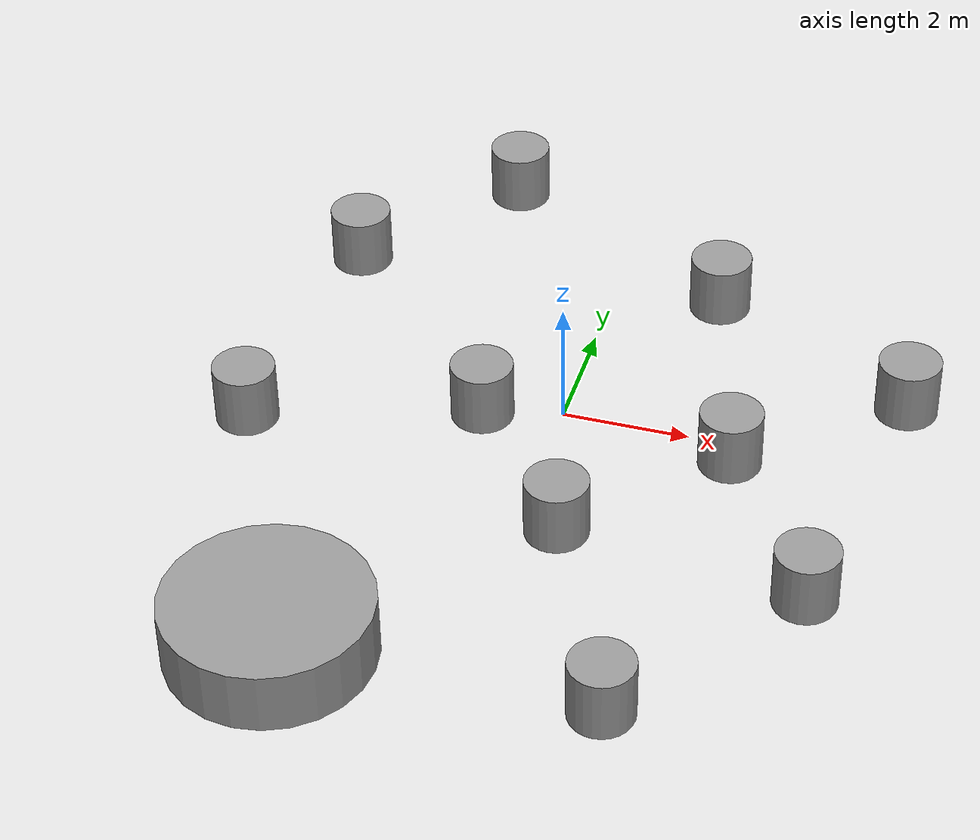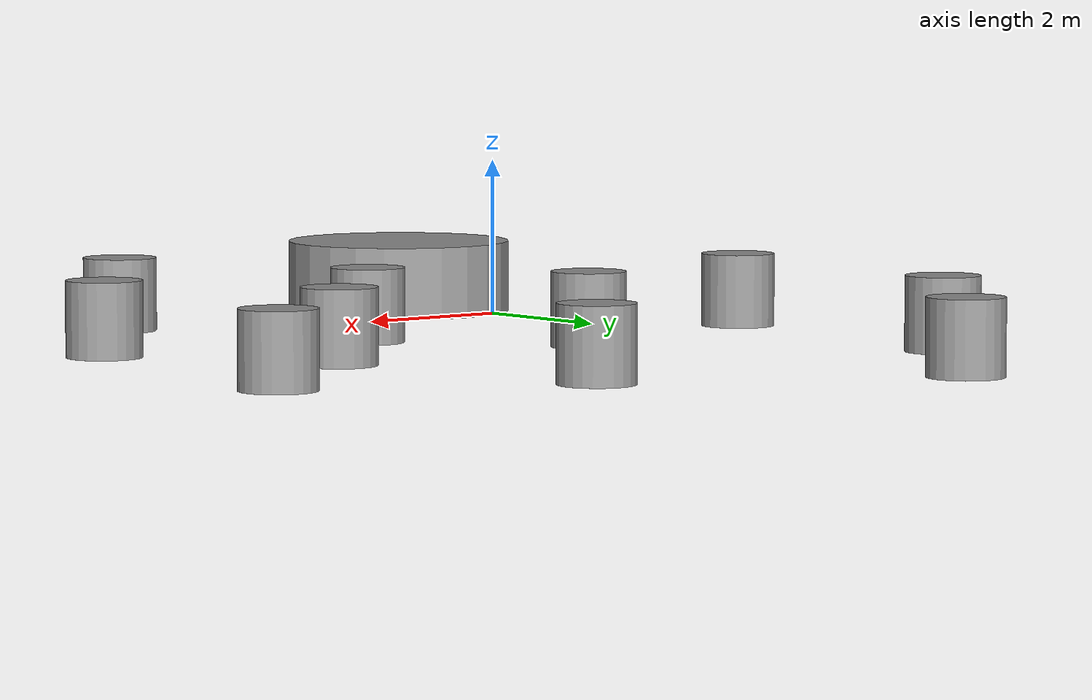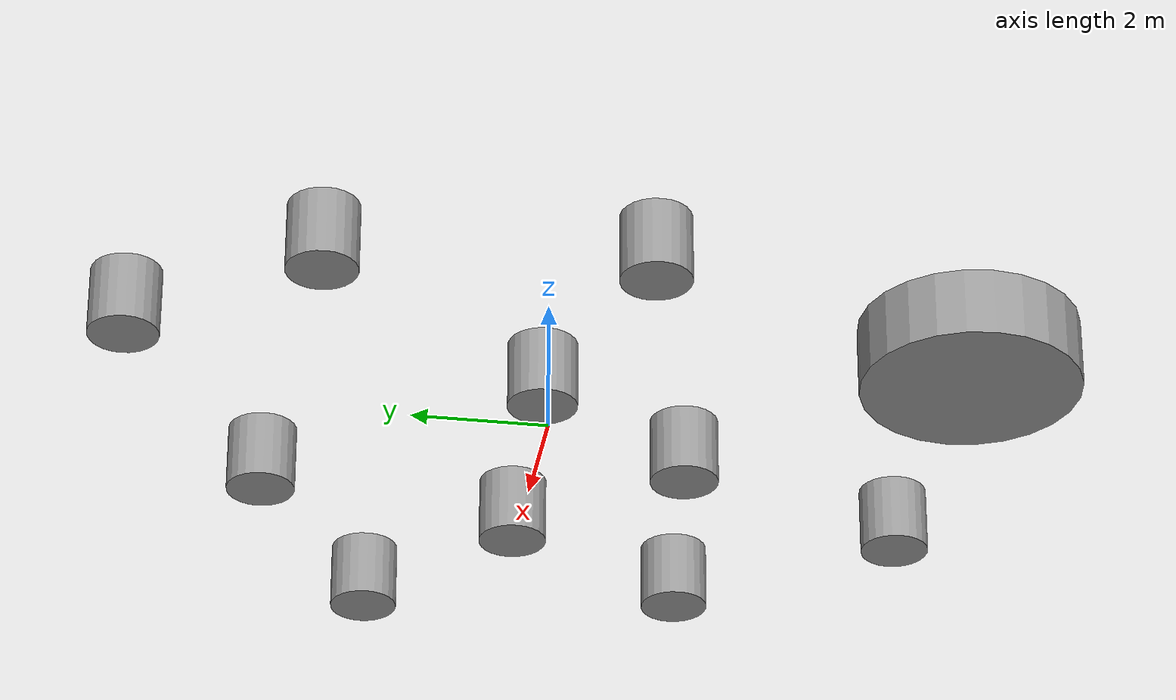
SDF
<?xml version='1.0'?>
<sdf version='1.7'>
  <model name='forceDafield'>
    <link name='link_0'>
      <inertial>
        <mass>9.89524</mass>
        <inertia>
          <ixx>6.94445</ixx>
          <ixy>0</ixy>
          <ixz>0</ixz>
          <iyy>6.94445</iyy>
          <iyz>0</iyz>
          <izz>12.2397</izz>
        </inertia>
        <pose>0 0 0 0 -0 0</pose>
      </inertial>
      <pose>-2.7803 -5.58409 0 0 -0 0</pose>
      <visual name='visual'>
        <pose>0 0 0 0 -0 0</pose>
        <geometry>
          <cylinder>
            <radius>1.57285</radius>
            <length>1</length>
          </cylinder>
        </geometry>
        <material>
          <lighting>1</lighting>
          <script>
            <uri>file://media/materials/scripts/gazebo.material</uri>
            <name>Gazebo/Grey</name>
          </script>
          <shader type='pixel'/>
        </material>
        <transparency>0</transparency>
        <cast_shadows>1</cast_shadows>
      </visual>
      <collision name='collision'>
        <laser_retro>0</laser_retro>
        <max_contacts>10</max_contacts>
        <pose>0 0 0 0 -0 0</pose>
        <geometry>
          <cylinder>
            <radius>1.57285</radius>
            <length>1</length>
          </cylinder>
        </geometry>
        <surface>
          <friction>
            <ode>
              <mu>1</mu>
              <mu2>1</mu2>
              <fdir1>0 0 0</fdir1>
              <slip1>0</slip1>
              <slip2>0</slip2>
            </ode>
            <torsional>
              <coefficient>1</coefficient>
              <patch_radius>0</patch_radius>
              <surface_radius>0</surface_radius>
              <use_patch_radius>1</use_patch_radius>
              <ode>
                <slip>0</slip>
              </ode>
            </torsional>
          </friction>
          <bounce>
            <restitution_coefficient>0</restitution_coefficient>
            <threshold>1e+06</threshold>
          </bounce>
          <contact>
            <collide_without_contact>0</collide_without_contact>
            <collide_without_contact_bitmask>1</collide_without_contact_bitmask>
            <collide_bitmask>1</collide_bitmask>
            <ode>
              <soft_cfm>0</soft_cfm>
              <soft_erp>0.2</soft_erp>
              <kp>1e+13</kp>
              <kd>1</kd>
              <max_vel>0.01</max_vel>
              <min_depth>0</min_depth>
            </ode>
            <bullet>
              <split_impulse>1</split_impulse>
              <split_impulse_penetration_threshold>-0.01</split_impulse_penetration_threshold>
              <soft_cfm>0</soft_cfm>
              <soft_erp>0.2</soft_erp>
              <kp>1e+13</kp>
              <kd>1</kd>
            </bullet>
          </contact>
        </surface>
      </collision>
    </link>
    <link name='link_1'>
      <inertial>
        <mass>1</mass>
        <inertia>
          <ixx>0.145833</ixx>
          <ixy>0</ixy>
          <ixz>0</ixz>
          <iyy>0.145833</iyy>
          <iyz>0</iyz>
          <izz>0.125</izz>
        </inertia>
      </inertial>
      <pose>-1.39645 0.27819 0 0 -0 0</pose>
      <visual name='visual'>
        <pose>0 0 0 0 -0 0</pose>
        <geometry>
          <cylinder>
            <radius>0.5</radius>
            <length>1</length>
          </cylinder>
        </geometry>
        <material>
          <lighting>1</lighting>
          <script>
            <uri>file://media/materials/scripts/gazebo.material</uri>
            <name>Gazebo/Grey</name>
          </script>
          <shader type='pixel'/>
        </material>
        <transparency>0</transparency>
        <cast_shadows>1</cast_shadows>
      </visual>
      <collision name='collision'>
        <laser_retro>0</laser_retro>
        <max_contacts>10</max_contacts>
        <pose>0 0 0 0 -0 0</pose>
        <geometry>
          <cylinder>
            <radius>0.5</radius>
            <length>1</length>
          </cylinder>
        </geometry>
        <surface>
          <friction>
            <ode>
              <mu>1</mu>
              <mu2>1</mu2>
              <fdir1>0 0 0</fdir1>
              <slip1>0</slip1>
              <slip2>0</slip2>
            </ode>
            <torsional>
              <coefficient>1</coefficient>
              <patch_radius>0</patch_radius>
              <surface_radius>0</surface_radius>
              <use_patch_radius>1</use_patch_radius>
              <ode>
                <slip>0</slip>
              </ode>
            </torsional>
          </friction>
          <bounce>
            <restitution_coefficient>0</restitution_coefficient>
            <threshold>1e+06</threshold>
          </bounce>
          <contact>
            <collide_without_contact>0</collide_without_contact>
            <collide_without_contact_bitmask>1</collide_without_contact_bitmask>
            <collide_bitmask>1</collide_bitmask>
            <ode>
              <soft_cfm>0</soft_cfm>
              <soft_erp>0.2</soft_erp>
              <kp>1e+13</kp>
              <kd>1</kd>
              <max_vel>0.01</max_vel>
              <min_depth>0</min_depth>
            </ode>
            <bullet>
              <split_impulse>1</split_impulse>
              <split_impulse_penetration_threshold>-0.01</split_impulse_penetration_threshold>
              <soft_cfm>0</soft_cfm>
              <soft_erp>0.2</soft_erp>
              <kp>1e+13</kp>
              <kd>1</kd>
            </bullet>
          </contact>
        </surface>
      </collision>
    </link>
    <link name='link_10'>
      <inertial>
        <mass>1</mass>
        <inertia>
          <ixx>0.145833</ixx>
          <ixy>0</ixy>
          <ixz>0</ixz>
          <iyy>0.145833</iyy>
          <iyz>0</iyz>
          <izz>0.125</izz>
        </inertia>
      </inertial>
      <pose>-2.49127 6.23501 0 0 -0 0</pose>
      <visual name='visual'>
        <pose>0 0 0 0 -0 0</pose>
        <geometry>
          <cylinder>
            <radius>0.5</radius>
            <length>1</length>
          </cylinder>
        </geometry>
        <material>
          <lighting>1</lighting>
          <script>
            <uri>file://media/materials/scripts/gazebo.material</uri>
            <name>Gazebo/Grey</name>
          </script>
          <shader type='pixel'/>
        </material>
        <transparency>0</transparency>
        <cast_shadows>1</cast_shadows>
      </visual>
      <collision name='collision'>
        <laser_retro>0</laser_retro>
        <max_contacts>10</max_contacts>
        <pose>0 0 0 0 -0 0</pose>
        <geometry>
          <cylinder>
            <radius>0.5</radius>
            <length>1</length>
          </cylinder>
        </geometry>
        <surface>
          <friction>
            <ode>
              <mu>1</mu>
              <mu2>1</mu2>
              <fdir1>0 0 0</fdir1>
              <slip1>0</slip1>
              <slip2>0</slip2>
            </ode>
            <torsional>
              <coefficient>1</coefficient>
              <patch_radius>0</patch_radius>
              <surface_radius>0</surface_radius>
              <use_patch_radius>1</use_patch_radius>
              <ode>
                <slip>0</slip>
              </ode>
            </torsional>
          </friction>
          <bounce>
            <restitution_coefficient>0</restitution_coefficient>
            <threshold>1e+06</threshold>
          </bounce>
          <contact>
            <collide_without_contact>0</collide_without_contact>
            <collide_without_contact_bitmask>1</collide_without_contact_bitmask>
            <collide_bitmask>1</collide_bitmask>
            <ode>
              <soft_cfm>0</soft_cfm>
              <soft_erp>0.2</soft_erp>
              <kp>1e+13</kp>
              <kd>1</kd>
              <max_vel>0.01</max_vel>
              <min_depth>0</min_depth>
            </ode>
            <bullet>
              <split_impulse>1</split_impulse>
              <split_impulse_penetration_threshold>-0.01</split_impulse_penetration_threshold>
              <soft_cfm>0</soft_cfm>
              <soft_erp>0.2</soft_erp>
              <kp>1e+13</kp>
              <kd>1</kd>
            </bullet>
          </contact>
        </surface>
      </collision>
    </link>
    <link name='link_2'>
      <inertial>
        <mass>1</mass>
        <inertia>
          <ixx>0.145833</ixx>
          <ixy>0</ixy>
          <ixz>0</ixz>
          <iyy>0.145833</iyy>
          <iyz>0</iyz>
          <izz>0.125</izz>
        </inertia>
      </inertial>
      <pose>-4.96369 -0.759655 0 0 -0 0</pose>
      <visual name='visual'>
        <pose>0 0 0 0 -0 0</pose>
        <geometry>
          <cylinder>
            <radius>0.5</radius>
            <length>1</length>
          </cylinder>
        </geometry>
        <material>
          <lighting>1</lighting>
          <script>
            <uri>file://media/materials/scripts/gazebo.material</uri>
            <name>Gazebo/Grey</name>
          </script>
          <shader type='pixel'/>
        </material>
        <transparency>0</transparency>
        <cast_shadows>1</cast_shadows>
      </visual>
      <collision name='collision'>
        <laser_retro>0</laser_retro>
        <max_contacts>10</max_contacts>
        <pose>0 0 0 0 -0 0</pose>
        <geometry>
          <cylinder>
            <radius>0.5</radius>
            <length>1</length>
          </cylinder>
        </geometry>
        <surface>
          <friction>
            <ode>
              <mu>1</mu>
              <mu2>1</mu2>
              <fdir1>0 0 0</fdir1>
              <slip1>0</slip1>
              <slip2>0</slip2>
            </ode>
            <torsional>
              <coefficient>1</coefficient>
              <patch_radius>0</patch_radius>
              <surface_radius>0</surface_radius>
              <use_patch_radius>1</use_patch_radius>
              <ode>
                <slip>0</slip>
              </ode>
            </torsional>
          </friction>
          <bounce>
            <restitution_coefficient>0</restitution_coefficient>
            <threshold>1e+06</threshold>
          </bounce>
          <contact>
            <collide_without_contact>0</collide_without_contact>
            <collide_without_contact_bitmask>1</collide_without_contact_bitmask>
            <collide_bitmask>1</collide_bitmask>
            <ode>
              <soft_cfm>0</soft_cfm>
              <soft_erp>0.2</soft_erp>
              <kp>1e+13</kp>
              <kd>1</kd>
              <max_vel>0.01</max_vel>
              <min_depth>0</min_depth>
            </ode>
            <bullet>
              <split_impulse>1</split_impulse>
              <split_impulse_penetration_threshold>-0.01</split_impulse_penetration_threshold>
              <soft_cfm>0</soft_cfm>
              <soft_erp>0.2</soft_erp>
              <kp>1e+13</kp>
              <kd>1</kd>
            </bullet>
          </contact>
        </surface>
      </collision>
    </link>
    <link name='link_3'>
      <inertial>
        <mass>1</mass>
        <inertia>
          <ixx>0.145833</ixx>
          <ixy>0</ixy>
          <ixz>0</ixz>
          <iyy>0.145833</iyy>
          <iyz>0</iyz>
          <izz>0.125</izz>
        </inertia>
      </inertial>
      <pose>0.470467 -2.06838 0 0 -0 0</pose>
      <visual name='visual'>
        <pose>0 0 0 0 -0 0</pose>
        <geometry>
          <cylinder>
            <radius>0.5</radius>
            <length>1</length>
          </cylinder>
        </geometry>
        <material>
          <lighting>1</lighting>
          <script>
            <uri>file://media/materials/scripts/gazebo.material</uri>
            <name>Gazebo/Grey</name>
          </script>
          <shader type='pixel'/>
        </material>
        <transparency>0</transparency>
        <cast_shadows>1</cast_shadows>
      </visual>
      <collision name='collision'>
        <laser_retro>0</laser_retro>
        <max_contacts>10</max_contacts>
        <pose>0 0 0 0 -0 0</pose>
        <geometry>
          <cylinder>
            <radius>0.5</radius>
            <length>1</length>
          </cylinder>
        </geometry>
        <surface>
          <friction>
            <ode>
              <mu>1</mu>
              <mu2>1</mu2>
              <fdir1>0 0 0</fdir1>
              <slip1>0</slip1>
              <slip2>0</slip2>
            </ode>
            <torsional>
              <coefficient>1</coefficient>
              <patch_radius>0</patch_radius>
              <surface_radius>0</surface_radius>
              <use_patch_radius>1</use_patch_radius>
              <ode>
                <slip>0</slip>
              </ode>
            </torsional>
          </friction>
          <bounce>
            <restitution_coefficient>0</restitution_coefficient>
            <threshold>1e+06</threshold>
          </bounce>
          <contact>
            <collide_without_contact>0</collide_without_contact>
            <collide_without_contact_bitmask>1</collide_without_contact_bitmask>
            <collide_bitmask>1</collide_bitmask>
            <ode>
              <soft_cfm>0</soft_cfm>
              <soft_erp>0.2</soft_erp>
              <kp>1e+13</kp>
              <kd>1</kd>
              <max_vel>0.01</max_vel>
              <min_depth>0</min_depth>
            </ode>
            <bullet>
              <split_impulse>1</split_impulse>
              <split_impulse_penetration_threshold>-0.01</split_impulse_penetration_threshold>
              <soft_cfm>0</soft_cfm>
              <soft_erp>0.2</soft_erp>
              <kp>1e+13</kp>
              <kd>1</kd>
            </bullet>
          </contact>
        </surface>
      </collision>
    </link>
    <link name='link_4'>
      <inertial>
        <mass>1</mass>
        <inertia>
          <ixx>0.145833</ixx>
          <ixy>0</ixy>
          <ixz>0</ixz>
          <iyy>0.145833</iyy>
          <iyz>0</iyz>
          <izz>0.125</izz>
        </inertia>
      </inertial>
      <pose>2.62914 0.158182 0 0 -0 0</pose>
      <visual name='visual'>
        <pose>0 0 0 0 -0 0</pose>
        <geometry>
          <cylinder>
            <radius>0.5</radius>
            <length>1</length>
          </cylinder>
        </geometry>
        <material>
          <lighting>1</lighting>
          <script>
            <uri>file://media/materials/scripts/gazebo.material</uri>
            <name>Gazebo/Grey</name>
          </script>
          <shader type='pixel'/>
        </material>
        <transparency>0</transparency>
        <cast_shadows>1</cast_shadows>
      </visual>
      <collision name='collision'>
        <laser_retro>0</laser_retro>
        <max_contacts>10</max_contacts>
        <pose>0 0 0 0 -0 0</pose>
        <geometry>
          <cylinder>
            <radius>0.5</radius>
            <length>1</length>
          </cylinder>
        </geometry>
        <surface>
          <friction>
            <ode>
              <mu>1</mu>
              <mu2>1</mu2>
              <fdir1>0 0 0</fdir1>
              <slip1>0</slip1>
              <slip2>0</slip2>
            </ode>
            <torsional>
              <coefficient>1</coefficient>
              <patch_radius>0</patch_radius>
              <surface_radius>0</surface_radius>
              <use_patch_radius>1</use_patch_radius>
              <ode>
                <slip>0</slip>
              </ode>
            </torsional>
          </friction>
          <bounce>
            <restitution_coefficient>0</restitution_coefficient>
            <threshold>1e+06</threshold>
          </bounce>
          <contact>
            <collide_without_contact>0</collide_without_contact>
            <collide_without_contact_bitmask>1</collide_without_contact_bitmask>
            <collide_bitmask>1</collide_bitmask>
            <ode>
              <soft_cfm>0</soft_cfm>
              <soft_erp>0.2</soft_erp>
              <kp>1e+13</kp>
              <kd>1</kd>
              <max_vel>0.01</max_vel>
              <min_depth>0</min_depth>
            </ode>
            <bullet>
              <split_impulse>1</split_impulse>
              <split_impulse_penetration_threshold>-0.01</split_impulse_penetration_threshold>
              <soft_cfm>0</soft_cfm>
              <soft_erp>0.2</soft_erp>
              <kp>1e+13</kp>
              <kd>1</kd>
            </bullet>
          </contact>
        </surface>
      </collision>
    </link>
    <link name='link_5'>
      <inertial>
        <mass>1</mass>
        <inertia>
          <ixx>0.145833</ixx>
          <ixy>0</ixy>
          <ixz>0</ixz>
          <iyy>0.145833</iyy>
          <iyz>0</iyz>
          <izz>0.125</izz>
        </inertia>
      </inertial>
      <pose>4.36079 -2.57114 0 0 -0 0</pose>
      <visual name='visual'>
        <pose>0 0 0 0 -0 0</pose>
        <geometry>
          <cylinder>
            <radius>0.5</radius>
            <length>1</length>
          </cylinder>
        </geometry>
        <material>
          <lighting>1</lighting>
          <script>
            <uri>file://media/materials/scripts/gazebo.material</uri>
            <name>Gazebo/Grey</name>
          </script>
          <shader type='pixel'/>
        </material>
        <transparency>0</transparency>
        <cast_shadows>1</cast_shadows>
      </visual>
      <collision name='collision'>
        <laser_retro>0</laser_retro>
        <max_contacts>10</max_contacts>
        <pose>0 0 0 0 -0 0</pose>
        <geometry>
          <cylinder>
            <radius>0.5</radius>
            <length>1</length>
          </cylinder>
        </geometry>
        <surface>
          <friction>
            <ode>
              <mu>1</mu>
              <mu2>1</mu2>
              <fdir1>0 0 0</fdir1>
              <slip1>0</slip1>
              <slip2>0</slip2>
            </ode>
            <torsional>
              <coefficient>1</coefficient>
              <patch_radius>0</patch_radius>
              <surface_radius>0</surface_radius>
              <use_patch_radius>1</use_patch_radius>
              <ode>
                <slip>0</slip>
              </ode>
            </torsional>
          </friction>
          <bounce>
            <restitution_coefficient>0</restitution_coefficient>
            <threshold>1e+06</threshold>
          </bounce>
          <contact>
            <collide_without_contact>0</collide_without_contact>
            <collide_without_contact_bitmask>1</collide_without_contact_bitmask>
            <collide_bitmask>1</collide_bitmask>
            <ode>
              <soft_cfm>0</soft_cfm>
              <soft_erp>0.2</soft_erp>
              <kp>1e+13</kp>
              <kd>1</kd>
              <max_vel>0.01</max_vel>
              <min_depth>0</min_depth>
            </ode>
            <bullet>
              <split_impulse>1</split_impulse>
              <split_impulse_penetration_threshold>-0.01</split_impulse_penetration_threshold>
              <soft_cfm>0</soft_cfm>
              <soft_erp>0.2</soft_erp>
              <kp>1e+13</kp>
              <kd>1</kd>
            </bullet>
          </contact>
        </surface>
      </collision>
    </link>
    <link name='link_6'>
      <inertial>
        <mass>1</mass>
        <inertia>
          <ixx>0.145833</ixx>
          <ixy>0</ixy>
          <ixz>0</ixz>
          <iyy>0.145833</iyy>
          <iyz>0</iyz>
          <izz>0.125</izz>
        </inertia>
      </inertial>
      <pose>2.07755 -5.52785 0 0 -0 0</pose>
      <visual name='visual'>
        <pose>0 0 0 0 -0 0</pose>
        <geometry>
          <cylinder>
            <radius>0.5</radius>
            <length>1</length>
          </cylinder>
        </geometry>
        <material>
          <lighting>1</lighting>
          <script>
            <uri>file://media/materials/scripts/gazebo.material</uri>
            <name>Gazebo/Grey</name>
          </script>
          <shader type='pixel'/>
        </material>
        <transparency>0</transparency>
        <cast_shadows>1</cast_shadows>
      </visual>
      <collision name='collision'>
        <laser_retro>0</laser_retro>
        <max_contacts>10</max_contacts>
        <pose>0 0 0 0 -0 0</pose>
        <geometry>
          <cylinder>
            <radius>0.5</radius>
            <length>1</length>
          </cylinder>
        </geometry>
        <surface>
          <friction>
            <ode>
              <mu>1</mu>
              <mu2>1</mu2>
              <fdir1>0 0 0</fdir1>
              <slip1>0</slip1>
              <slip2>0</slip2>
            </ode>
            <torsional>
              <coefficient>1</coefficient>
              <patch_radius>0</patch_radius>
              <surface_radius>0</surface_radius>
              <use_patch_radius>1</use_patch_radius>
              <ode>
                <slip>0</slip>
              </ode>
            </torsional>
          </friction>
          <bounce>
            <restitution_coefficient>0</restitution_coefficient>
            <threshold>1e+06</threshold>
          </bounce>
          <contact>
            <collide_without_contact>0</collide_without_contact>
            <collide_without_contact_bitmask>1</collide_without_contact_bitmask>
            <collide_bitmask>1</collide_bitmask>
            <ode>
              <soft_cfm>0</soft_cfm>
              <soft_erp>0.2</soft_erp>
              <kp>1e+13</kp>
              <kd>1</kd>
              <max_vel>0.01</max_vel>
              <min_depth>0</min_depth>
            </ode>
            <bullet>
              <split_impulse>1</split_impulse>
              <split_impulse_penetration_threshold>-0.01</split_impulse_penetration_threshold>
              <soft_cfm>0</soft_cfm>
              <soft_erp>0.2</soft_erp>
              <kp>1e+13</kp>
              <kd>1</kd>
            </bullet>
          </contact>
        </surface>
      </collision>
    </link>
    <link name='link_7'>
      <inertial>
        <mass>1</mass>
        <inertia>
          <ixx>0.145833</ixx>
          <ixy>0</ixy>
          <ixz>0</ixz>
          <iyy>0.145833</iyy>
          <iyz>0</iyz>
          <izz>0.125</izz>
        </inertia>
      </inertial>
      <pose>-4.5582 3.70514 0 0 -0 0</pose>
      <visual name='visual'>
        <pose>0 0 0 0 -0 0</pose>
        <geometry>
          <cylinder>
            <radius>0.5</radius>
            <length>1</length>
          </cylinder>
        </geometry>
        <material>
          <lighting>1</lighting>
          <script>
            <uri>file://media/materials/scripts/gazebo.material</uri>
            <name>Gazebo/Grey</name>
          </script>
          <shader type='pixel'/>
        </material>
        <transparency>0</transparency>
        <cast_shadows>1</cast_shadows>
      </visual>
      <collision name='collision'>
        <laser_retro>0</laser_retro>
        <max_contacts>10</max_contacts>
        <pose>0 0 0 0 -0 0</pose>
        <geometry>
          <cylinder>
            <radius>0.5</radius>
            <length>1</length>
          </cylinder>
        </geometry>
        <surface>
          <friction>
            <ode>
              <mu>1</mu>
              <mu2>1</mu2>
              <fdir1>0 0 0</fdir1>
              <slip1>0</slip1>
              <slip2>0</slip2>
            </ode>
            <torsional>
              <coefficient>1</coefficient>
              <patch_radius>0</patch_radius>
              <surface_radius>0</surface_radius>
              <use_patch_radius>1</use_patch_radius>
              <ode>
                <slip>0</slip>
              </ode>
            </torsional>
          </friction>
          <bounce>
            <restitution_coefficient>0</restitution_coefficient>
            <threshold>1e+06</threshold>
          </bounce>
          <contact>
            <collide_without_contact>0</collide_without_contact>
            <collide_without_contact_bitmask>1</collide_without_contact_bitmask>
            <collide_bitmask>1</collide_bitmask>
            <ode>
              <soft_cfm>0</soft_cfm>
              <soft_erp>0.2</soft_erp>
              <kp>1e+13</kp>
              <kd>1</kd>
              <max_vel>0.01</max_vel>
              <min_depth>0</min_depth>
            </ode>
            <bullet>
              <split_impulse>1</split_impulse>
              <split_impulse_penetration_threshold>-0.01</split_impulse_penetration_threshold>
              <soft_cfm>0</soft_cfm>
              <soft_erp>0.2</soft_erp>
              <kp>1e+13</kp>
              <kd>1</kd>
            </bullet>
          </contact>
        </surface>
      </collision>
    </link>
    <link name='link_8'>
      <inertial>
        <mass>1</mass>
        <inertia>
          <ixx>0.145833</ixx>
          <ixy>0</ixy>
          <ixz>0</ixz>
          <iyy>0.145833</iyy>
          <iyz>0</iyz>
          <izz>0.125</izz>
        </inertia>
      </inertial>
      <pose>1.6036 4.00176 0 0 -0 0</pose>
      <visual name='visual'>
        <pose>0 0 0 0 -0 0</pose>
        <geometry>
          <cylinder>
            <radius>0.5</radius>
            <length>1</length>
          </cylinder>
        </geometry>
        <material>
          <lighting>1</lighting>
          <script>
            <uri>file://media/materials/scripts/gazebo.material</uri>
            <name>Gazebo/Grey</name>
          </script>
          <shader type='pixel'/>
        </material>
        <transparency>0</transparency>
        <cast_shadows>1</cast_shadows>
      </visual>
      <collision name='collision'>
        <laser_retro>0</laser_retro>
        <max_contacts>10</max_contacts>
        <pose>0 0 0 0 -0 0</pose>
        <geometry>
          <cylinder>
            <radius>0.5</radius>
            <length>1</length>
          </cylinder>
        </geometry>
        <surface>
          <friction>
            <ode>
              <mu>1</mu>
              <mu2>1</mu2>
              <fdir1>0 0 0</fdir1>
              <slip1>0</slip1>
              <slip2>0</slip2>
            </ode>
            <torsional>
              <coefficient>1</coefficient>
              <patch_radius>0</patch_radius>
              <surface_radius>0</surface_radius>
              <use_patch_radius>1</use_patch_radius>
              <ode>
                <slip>0</slip>
              </ode>
            </torsional>
          </friction>
          <bounce>
            <restitution_coefficient>0</restitution_coefficient>
            <threshold>1e+06</threshold>
          </bounce>
          <contact>
            <collide_without_contact>0</collide_without_contact>
            <collide_without_contact_bitmask>1</collide_without_contact_bitmask>
            <collide_bitmask>1</collide_bitmask>
            <ode>
              <soft_cfm>0</soft_cfm>
              <soft_erp>0.2</soft_erp>
              <kp>1e+13</kp>
              <kd>1</kd>
              <max_vel>0.01</max_vel>
              <min_depth>0</min_depth>
            </ode>
            <bullet>
              <split_impulse>1</split_impulse>
              <split_impulse_penetration_threshold>-0.01</split_impulse_penetration_threshold>
              <soft_cfm>0</soft_cfm>
              <soft_erp>0.2</soft_erp>
              <kp>1e+13</kp>
              <kd>1</kd>
            </bullet>
          </contact>
        </surface>
      </collision>
    </link>
    <link name='link_9'>
      <inertial>
        <mass>1</mass>
        <inertia>
          <ixx>0.145833</ixx>
          <ixy>0</ixy>
          <ixz>0</ixz>
          <iyy>0.145833</iyy>
          <iyz>0</iyz>
          <izz>0.125</izz>
        </inertia>
      </inertial>
      <pose>5.04835 2.13282 0 0 -0 0</pose>
      <visual name='visual'>
        <pose>0 0 0 0 -0 0</pose>
        <geometry>
          <cylinder>
            <radius>0.5</radius>
            <length>1</length>
          </cylinder>
        </geometry>
        <material>
          <lighting>1</lighting>
          <script>
            <uri>file://media/materials/scripts/gazebo.material</uri>
            <name>Gazebo/Grey</name>
          </script>
          <shader type='pixel'/>
        </material>
        <transparency>0</transparency>
        <cast_shadows>1</cast_shadows>
      </visual>
      <collision name='collision'>
        <laser_retro>0</laser_retro>
        <max_contacts>10</max_contacts>
        <pose>0 0 0 0 -0 0</pose>
        <geometry>
          <cylinder>
            <radius>0.5</radius>
            <length>1</length>
          </cylinder>
        </geometry>
        <surface>
          <friction>
            <ode>
              <mu>1</mu>
              <mu2>1</mu2>
              <fdir1>0 0 0</fdir1>
              <slip1>0</slip1>
              <slip2>0</slip2>
            </ode>
            <torsional>
              <coefficient>1</coefficient>
              <patch_radius>0</patch_radius>
              <surface_radius>0</surface_radius>
              <use_patch_radius>1</use_patch_radius>
              <ode>
                <slip>0</slip>
              </ode>
            </torsional>
          </friction>
          <bounce>
            <restitution_coefficient>0</restitution_coefficient>
            <threshold>1e+06</threshold>
          </bounce>
          <contact>
            <collide_without_contact>0</collide_without_contact>
            <collide_without_contact_bitmask>1</collide_without_contact_bitmask>
            <collide_bitmask>1</collide_bitmask>
            <ode>
              <soft_cfm>0</soft_cfm>
              <soft_erp>0.2</soft_erp>
              <kp>1e+13</kp>
              <kd>1</kd>
              <max_vel>0.01</max_vel>
              <min_depth>0</min_depth>
            </ode>
            <bullet>
              <split_impulse>1</split_impulse>
              <split_impulse_penetration_threshold>-0.01</split_impulse_penetration_threshold>
              <soft_cfm>0</soft_cfm>
              <soft_erp>0.2</soft_erp>
              <kp>1e+13</kp>
              <kd>1</kd>
            </bullet>
          </contact>
        </surface>
      </collision>
    </link>
    <static>0</static>
    <allow_auto_disable>1</allow_auto_disable>
  </model>
</sdf>
